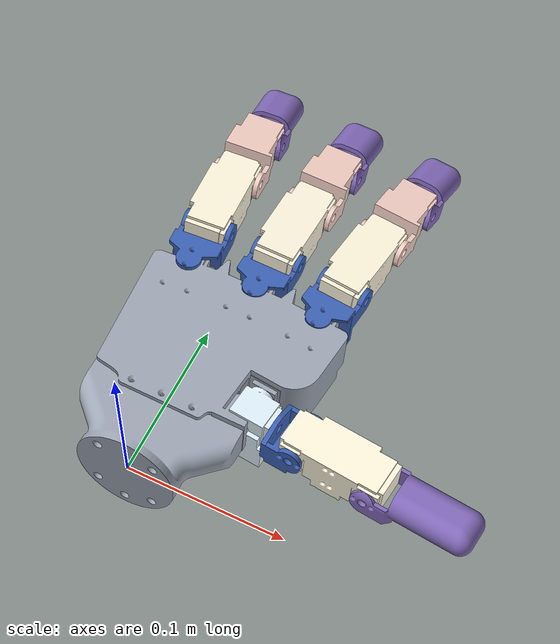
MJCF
<mujoco model="tilburg_hand">
<option timestep="0.01111" iterations="50" integrator="Euler" collision="predefined" gravity="0 0 -9.81" />
  <compiler angle="radian" autolimits="true"/>
  <default/>
  <asset>
    <mesh name="handbase_and_motors_collision" file="handbase_and_motors_collision.stl"/>
    <mesh name="thumb_mcp_collision" file="thumb_mcp_collision.stl"/>
    <mesh name="test_thumb_roll_mcp_collision" file="test_thumb_roll_mcp_collision.stl"/>
    <mesh name="proximal_phalange_collision" file="proximal_phalange_collision.stl"/>
    <mesh name="thumb_distal_collision" file="thumb_distal_collision.stl"/>
    <mesh name="mcp_3_collision" file="mcp_3_collision.stl"/>
    <mesh name="proximal_phalange_2_collision" file="proximal_phalange_2_collision.stl"/>
    <mesh name="middle_phalange_collision" file="middle_phalange_collision.stl"/>
    <mesh name="distal_finalshape_collision" file="distal_finalshape_collision.stl"/>
    <mesh name="mcp_3_2_collision" file="mcp_3_2_collision.stl"/>
    <mesh name="proximal_phalange_3_collision" file="proximal_phalange_3_collision.stl"/>
    <mesh name="middle_phalange_2_collision" file="middle_phalange_2_collision.stl"/>
    <mesh name="distal_finalshape_2_collision" file="distal_finalshape_2_collision.stl"/>
    <mesh name="mcp_3_3_collision" file="mcp_3_3_collision.stl"/>
    <mesh name="proximal_phalange_4_collision" file="proximal_phalange_4_collision.stl"/>
    <mesh name="middle_phalange_3_collision" file="middle_phalange_3_collision.stl"/>
    <mesh name="distal_finalshape_3_collision" file="distal_finalshape_3_collision.stl"/>
  </asset>
  <worldbody>
<body name="hand_base" pos="0 0 0" euler="0 0 0">    <geom name="handbase_and_motors" conaffinity="1" contype="1" friction="1 0.005 0.001" margin="0.001" solimp="0.95 0.95 0.01" solref="0.008 1" type="mesh" rgba="0.615865 0.649203 0.705643 1" mesh="handbase_and_motors_collision"/>
    <body name="thumb_mcp" pos="0.0459067 0.0814877 -0.0103767" quat="0.0403773 -0.0219363 -0.674586 0.736765" gravcomp="0">
      <inertial pos="-0.00336008 0.0104245 0.0140112" quat="0.705399 0.708685 -0.00389937 -0.0127609" mass="0.0259261" diaginertia="4.44074e-06 4.37503e-06 2.95984e-06"/>
      <joint armature="0.01" damping="0.4" stiffness="0.3" frictionloss="0.01" ref="0" springref="0" margin="0.01" name="thumb_cmc" pos="0 0 0" axis="0 0 1" range="0 1.5708"/>
      <geom name="thumb_thumb_mcp" conaffinity="1" contype="1" friction="1 0.005 0.001" margin="0.001" solimp="0.95 0.95 0.01" solref="0.008 1" type="mesh" rgba="0.871558 0.93709 0.976409 1" mesh="thumb_mcp_collision"/>
      <body name="test_thumb_roll_mcp" pos="-0.01699 0 0.014" quat="0.707107 0 -0.707107 0" gravcomp="0">
        <inertial pos="-0.000503967 0.00367437 0.00891183" quat="0.441307 0.548539 0.474465 0.528428" mass="0.0051287" diaginertia="1.09205e-06 9.52622e-07 4.71781e-07"/>
        <joint armature="0.01" damping="0.4" stiffness="0.3" frictionloss="0.01" ref="0" springref="0" margin="0.01" name="thumb_mcp_rot" pos="0 0 0" axis="0 0 1" range="-1.74533 0"/>
        <geom name="thumb_test_thumb_roll_mcp" conaffinity="1" contype="1" friction="1 0.005 0.001" margin="0.001" solimp="0.95 0.95 0.01" solref="0.008 1" type="mesh" rgba="0.231373 0.380392 0.705882 1" mesh="test_thumb_roll_mcp_collision"/>
        <body name="proximal_phalange" pos="0.0131 -1.07477e-06 0.0185" quat="0.5 -0.5 0.5 -0.5" gravcomp="0">
          <inertial pos="0.00105525 -0.0248 -0.0139711" quat="0.707098 0.707098 -0.00349569 0.00349569" mass="0.0420084" diaginertia="1.8062e-05 1.71932e-05 4.27729e-06"/>
          <joint armature="0.01" damping="0.4" stiffness="0.3" frictionloss="0.01" ref="0" springref="0" margin="0.01" name="thumb_mcp" pos="0 0 0" axis="0 0 1" range="0 1.5708"/>
          <geom name="thumb_proximal_phalange" conaffinity="1" contype="1" friction="1 0.005 0.001" margin="0.001" solimp="0.95 0.95 0.01" solref="0.008 1" type="mesh" rgba="0.996506 0.963661 0.868622 1" mesh="proximal_phalange_collision"/>
          <body name="thumb_distal" pos="0 -0.0496 0" quat="0.707107 0 0 -0.707107" gravcomp="0">
            <inertial pos="0.0361694 5.09546e-05 -0.0132835" quat="0.493044 0.486424 0.504201 0.51583" mass="0.01279" diaginertia="5.91941e-06 5.23433e-06 1.78431e-06"/>
            <joint armature="0.01" damping="0.4" stiffness="0.3" frictionloss="0.01" ref="0" springref="0" margin="0.01" name="thumb_ip" pos="0 0 0" axis="0 0 1" range="0 1.6581"/>
            <geom name="thumb_thumb_distal" conaffinity="1" contype="1" friction="1 0.005 0.001" margin="0.001" solimp="0.95 0.95 0.01" solref="0.008 1" type="mesh" rgba="0.513726 0.415686 0.733333 1" mesh="thumb_distal_collision"/>
          </body>
        </body>
      </body>
    </body>
    <body name="mcp_3" pos="0.0538972 0.140661 -0.00372245" quat="0.997976 -0.0439674 0.0130398 -0.0440624" gravcomp="0">
      <inertial pos="-0.00048757 0.0155243 -0.0117405" quat="0.719022 -0.283303 0.16479 0.612855" mass="0.00917755" diaginertia="2.25958e-06 2.05723e-06 1.86647e-06"/>
      <joint armature="0.01" damping="0.4" stiffness="0.3" frictionloss="0.01" ref="0" springref="0" margin="0.01" name="index_mcp_abadd" pos="0 0 0" axis="0 0 1" range="-0.436332 0.436332"/>
      <geom name="index_mcp_3" conaffinity="1" contype="1" friction="1 0.005 0.001" margin="0.001" solimp="0.95 0.95 0.01" solref="0.008 1" type="mesh" rgba="0.231373 0.380392 0.705882 1" mesh="mcp_3_collision"/>
      <body name="proximal_phalange_2" pos="0.0131 0.0325 -0.00659893" quat="0.0308436 0.706434 0.0308436 0.706434" gravcomp="0">
        <inertial pos="0.00105525 -0.0248 -0.0139711" quat="0.707098 0.707098 -0.00349569 0.00349569" mass="0.0420084" diaginertia="1.8062e-05 1.71932e-05 4.27729e-06"/>
        <joint armature="0.01" damping="0.4" stiffness="0.3" frictionloss="0.01" ref="0" springref="0" margin="0.01" name="index_mcp" pos="0 0 0" axis="0 0 1" range="-0.0873 1.6581"/>
        <geom name="index_proximal_phalange_2" conaffinity="1" contype="1" friction="1 0.005 0.001" margin="0.001" solimp="0.95 0.95 0.01" solref="0.008 1" type="mesh" rgba="0.996506 0.963661 0.868622 1" mesh="proximal_phalange_2_collision"/>
        <body name="middle_phalange" pos="0 -0.0496 0" quat="0.67559 0 0 -0.737277" gravcomp="0">
          <inertial pos="0.0297882 0.000739764 -0.0138886" quat="0.491469 0.482081 0.50191 0.523586" mass="0.0257193" diaginertia="6.56033e-06 5.56532e-06 3.02948e-06"/>
          <joint armature="0.01" damping="0.4" stiffness="0.3" frictionloss="0.01" ref="0" springref="0" margin="0.01" name="index_pip" pos="0 0 0" axis="0 0 1" range="-0.0873 1.6581"/>
          <geom name="index_middle_phalange" conaffinity="1" contype="1" friction="1 0.005 0.001" margin="0.001" solimp="0.95 0.95 0.01" solref="0.008 1" type="mesh" rgba="0.958732 0.818161 0.775603 1" mesh="middle_phalange_collision"/>
          <body name="distal_finalshape" pos="0.0423 0 -1e-05" quat="0.999048 0.000871834 3.80651e-05 -0.0436194" gravcomp="0">
            <inertial pos="0.0280291 -0.000103785 -0.0133295" quat="0.490667 0.474831 0.50425 0.528691" mass="0.00905" diaginertia="2.9933e-06 2.44126e-06 1.2834e-06"/>
            <joint armature="0.01" damping="0.4" stiffness="0.3" frictionloss="0.01" ref="0" springref="0" margin="0.01" name="index_dip" pos="0 0 0" axis="0 0 1" range="-0.0873 1.6581"/>
            <geom name="index_distal_finalshape" conaffinity="1" contype="1" friction="1 0.005 0.001" margin="0.001" solimp="0.95 0.95 0.01" solref="0.008 1" type="mesh" rgba="0.513726 0.415686 0.733333 1" mesh="distal_finalshape_collision"/>
          </body>
        </body>
      </body>
    </body>
    <body name="mcp_3_2" pos="0.00982995 0.142679 -0.00257471" quat="0.998948 -0.0433568 0.0149452 -0.000489352" gravcomp="0">
      <inertial pos="-0.00048757 0.0155243 -0.0117405" quat="0.719022 -0.283303 0.16479 0.612855" mass="0.00917755" diaginertia="2.25958e-06 2.05723e-06 1.86647e-06"/>
      <joint armature="0.01" damping="0.4" stiffness="0.3" frictionloss="0.01" ref="0" springref="0" margin="0.01" name="middle_mcp_abadd" pos="0 0 0" axis="0 0 1" range="-0.436332 0.436332"/>
      <geom name="middle_mcp_3_2" conaffinity="1" contype="1" friction="1 0.005 0.001" margin="0.001" solimp="0.95 0.95 0.01" solref="0.008 1" type="mesh" rgba="0.231373 0.380392 0.705882 1" mesh="mcp_3_2_collision"/>
      <body name="proximal_phalange_3" pos="0.0131 0.0325 -0.00659893" quat="0.0304446 0.706451 0.0304446 0.706451" gravcomp="0">
        <inertial pos="0.00105525 -0.0248 -0.0139711" quat="0.707098 0.707098 -0.00349569 0.00349569" mass="0.0420084" diaginertia="1.8062e-05 1.71932e-05 4.27729e-06"/>
        <joint armature="0.01" damping="0.4" stiffness="0.3" frictionloss="0.01" ref="0" springref="0" margin="0.01" name="middle_mcp" pos="0 0 0" axis="0 0 1" range="-0.0873 1.6581"/>
        <geom name="middle_proximal_phalange_3" conaffinity="1" contype="1" friction="1 0.005 0.001" margin="0.001" solimp="0.95 0.95 0.01" solref="0.008 1" type="mesh" rgba="0.996506 0.963661 0.868622 1" mesh="proximal_phalange_3_collision"/>
        <body name="middle_phalange_2" pos="0 -0.0496 0" quat="0.67588 0 0 -0.737012" gravcomp="0">
          <inertial pos="0.0297882 0.000739764 -0.0138886" quat="0.491469 0.482081 0.50191 0.523586" mass="0.0257193" diaginertia="6.56033e-06 5.56532e-06 3.02948e-06"/>
          <joint armature="0.01" damping="0.4" stiffness="0.3" frictionloss="0.01" ref="0" springref="0" margin="0.01" name="middle_pip" pos="0 0 0" axis="0 0 1" range="-0.0873 1.6581"/>
          <geom name="middle_middle_phalange_2" conaffinity="1" contype="1" friction="1 0.005 0.001" margin="0.001" solimp="0.95 0.95 0.01" solref="0.008 1" type="mesh" rgba="0.958732 0.818161 0.775603 1" mesh="middle_phalange_2_collision"/>
          <body name="distal_finalshape_2" pos="0.0423 0 -1e-05" quat="0.999054 0.000871839 3.79378e-05 -0.0434735" gravcomp="0">
            <inertial pos="0.0280291 -0.000103785 -0.0133295" quat="0.490667 0.474831 0.50425 0.528691" mass="0.00905" diaginertia="2.9933e-06 2.44126e-06 1.2834e-06"/>
            <joint armature="0.01" damping="0.4" stiffness="0.3" frictionloss="0.01" ref="0" springref="0" margin="0.01" name="middle_dip" pos="0 0 0" axis="0 0 1" range="-0.0873 1.6581"/>
            <geom name="middle_distal_finalshape_2" conaffinity="1" contype="1" friction="1 0.005 0.001" margin="0.001" solimp="0.95 0.95 0.01" solref="0.008 1" type="mesh" rgba="0.513726 0.415686 0.733333 1" mesh="distal_finalshape_2_collision"/>
          </body>
        </body>
      </body>
    </body>
    <body name="mcp_3_3" pos="-0.03465 0.140579 0.00196625" quat="0.998018 -0.0426636 0.0168222 0.0430846" gravcomp="0">
      <inertial pos="-0.00048757 0.0155243 -0.0117405" quat="0.719022 -0.283303 0.16479 0.612855" mass="0.00917755" diaginertia="2.25958e-06 2.05723e-06 1.86647e-06"/>
      <joint armature="0.01" damping="0.4" stiffness="0.3" frictionloss="0.01" ref="0" springref="0" margin="0.01" name="ring_mcp_abadd" pos="0 0 0" axis="0 0 1" range="-0.436332 0.436332"/>
      <geom name="ring_mcp_3_3" conaffinity="1" contype="1" friction="1 0.005 0.001" margin="0.001" solimp="0.95 0.95 0.01" solref="0.008 1" type="mesh" rgba="0.231373 0.380392 0.705882 1" mesh="mcp_3_3_collision"/>
      <body name="proximal_phalange_4" pos="0.0131 0.0325 -0.00659893" quat="0.0276998 0.706564 0.0276998 0.706564" gravcomp="0">
        <inertial pos="0.00105525 -0.0248 -0.0139711" quat="0.707098 0.707098 -0.00349569 0.00349569" mass="0.0420084" diaginertia="1.8062e-05 1.71932e-05 4.27729e-06"/>
        <joint armature="0.01" damping="0.4" stiffness="0.3" frictionloss="0.01" ref="0" springref="0" margin="0.01" name="ring_mcp" pos="0 0 0" axis="0 0 1" range="-0.0873 1.6581"/>
        <geom name="ring_proximal_phalange_4" conaffinity="1" contype="1" friction="1 0.005 0.001" margin="0.001" solimp="0.95 0.95 0.01" solref="0.008 1" type="mesh" rgba="0.996506 0.963661 0.868622 1" mesh="proximal_phalange_4_collision"/>
        <body name="middle_phalange_3" pos="0 -0.0496 0" quat="0.67559 0 0 -0.737277" gravcomp="0">
          <inertial pos="0.0297882 0.000739764 -0.0138886" quat="0.491469 0.482081 0.50191 0.523586" mass="0.0257193" diaginertia="6.56033e-06 5.56532e-06 3.02948e-06"/>
          <joint armature="0.01" damping="0.4" stiffness="0.3" frictionloss="0.01" ref="0" springref="0" margin="0.01" name="ring_pip" pos="0 0 0" axis="0 0 1" range="-0.0873 1.6581"/>
          <geom name="ring_middle_phalange_3" conaffinity="1" contype="1" friction="1 0.005 0.001" margin="0.001" solimp="0.95 0.95 0.01" solref="0.008 1" type="mesh" rgba="0.958732 0.818161 0.775603 1" mesh="middle_phalange_3_collision"/>
          <body name="distal_finalshape_3" pos="0.0423 0 -1e-05" quat="0.999048 0.000871834 3.80651e-05 -0.0436194" gravcomp="0">
            <inertial pos="0.0280291 -0.000103785 -0.0133295" quat="0.490667 0.474831 0.50425 0.528691" mass="0.00905" diaginertia="2.9933e-06 2.44126e-06 1.2834e-06"/>
            <joint armature="0.01" damping="0.4" stiffness="0.3" frictionloss="0.01" ref="0" springref="0" margin="0.01" name="ring_dip" pos="0 0 0" axis="0 0 1" range="-0.0873 1.6581"/>
            <geom name="ring_distal_finalshape_3" conaffinity="1" contype="1" friction="1 0.005 0.001" margin="0.001" solimp="0.95 0.95 0.01" solref="0.008 1" type="mesh" rgba="0.513726 0.415686 0.733333 1" mesh="distal_finalshape_3_collision"/>
          </body>
        </body>
      </body>
    </body>
</body>  </worldbody>
<actuator><position ctrllimited="true" forcelimited="true" forcerange="-3 3" kp="100" gear="1" ctrlrange="0 1.5708" joint="thumb_cmc" name="thumb_cmc"></position>
<position ctrllimited="true" forcelimited="true" forcerange="-3 3" kp="100" gear="1" ctrlrange="-1.74533 0" joint="thumb_mcp_rot" name="thumb_mcp_rot"></position>
<position ctrllimited="true" forcelimited="true" forcerange="-3 3" kp="100" gear="1" ctrlrange="0 1.5708" joint="thumb_mcp" name="thumb_mcp"></position>
<position ctrllimited="true" forcelimited="true" forcerange="-3 3" kp="100" gear="1" ctrlrange="0 1.6581" joint="thumb_ip" name="thumb_ip"></position>
<position ctrllimited="true" forcelimited="true" forcerange="-3 3" kp="100" gear="1" ctrlrange="-0.436332 0.436332" joint="index_mcp_abadd" name="index_mcp_abadd"></position>
<position ctrllimited="true" forcelimited="true" forcerange="-3 3" kp="100" gear="1" ctrlrange="-0.0873 1.6581" joint="index_mcp" name="index_mcp"></position>
<position ctrllimited="true" forcelimited="true" forcerange="-3 3" kp="100" gear="1" ctrlrange="-0.0873 1.6581" joint="index_pip" name="index_pip"></position>
<position ctrllimited="true" forcelimited="true" forcerange="-3 3" kp="100" gear="1" ctrlrange="-0.0873 1.6581" joint="index_dip" name="index_dip"></position>
<position ctrllimited="true" forcelimited="true" forcerange="-3 3" kp="100" gear="1" ctrlrange="-0.436332 0.436332" joint="middle_mcp_abadd" name="middle_mcp_abadd"></position>
<position ctrllimited="true" forcelimited="true" forcerange="-3 3" kp="100" gear="1" ctrlrange="-0.0873 1.6581" joint="middle_mcp" name="middle_mcp"></position>
<position ctrllimited="true" forcelimited="true" forcerange="-3 3" kp="100" gear="1" ctrlrange="-0.0873 1.6581" joint="middle_pip" name="middle_pip"></position>
<position ctrllimited="true" forcelimited="true" forcerange="-3 3" kp="100" gear="1" ctrlrange="-0.0873 1.6581" joint="middle_dip" name="middle_dip"></position>
<position ctrllimited="true" forcelimited="true" forcerange="-3 3" kp="100" gear="1" ctrlrange="-0.436332 0.436332" joint="ring_mcp_abadd" name="ring_mcp_abadd"></position>
<position ctrllimited="true" forcelimited="true" forcerange="-3 3" kp="100" gear="1" ctrlrange="-0.0873 1.6581" joint="ring_mcp" name="ring_mcp"></position>
<position ctrllimited="true" forcelimited="true" forcerange="-3 3" kp="100" gear="1" ctrlrange="-0.0873 1.6581" joint="ring_pip" name="ring_pip"></position>
<position ctrllimited="true" forcelimited="true" forcerange="-3 3" kp="100" gear="1" ctrlrange="-0.0873 1.6581" joint="ring_dip" name="ring_dip"></position>
</actuator>
<contact><pair geom1="thumb_proximal_phalange" geom2="index_mcp_3" condim="3" friction="1 0.005 0.001" margin="0.0005" solimp="0.95 0.95 0.01" solref="0.008 1" /><pair geom1="thumb_proximal_phalange" geom2="index_proximal_phalange_2" condim="3" friction="1 0.005 0.001" margin="0.0005" solimp="0.95 0.95 0.01" solref="0.008 1" /><pair geom1="thumb_proximal_phalange" geom2="index_middle_phalange" condim="3" friction="1 0.005 0.001" margin="0.0005" solimp="0.95 0.95 0.01" solref="0.008 1" /><pair geom1="thumb_proximal_phalange" geom2="index_distal_finalshape" condim="3" friction="1 0.005 0.001" margin="0.0005" solimp="0.95 0.95 0.01" solref="0.008 1" /><pair geom1="thumb_proximal_phalange" geom2="middle_mcp_3_2" condim="3" friction="1 0.005 0.001" margin="0.0005" solimp="0.95 0.95 0.01" solref="0.008 1" /><pair geom1="thumb_proximal_phalange" geom2="middle_proximal_phalange_3" condim="3" friction="1 0.005 0.001" margin="0.0005" solimp="0.95 0.95 0.01" solref="0.008 1" /><pair geom1="thumb_proximal_phalange" geom2="middle_middle_phalange_2" condim="3" friction="1 0.005 0.001" margin="0.0005" solimp="0.95 0.95 0.01" solref="0.008 1" /><pair geom1="thumb_proximal_phalange" geom2="middle_distal_finalshape_2" condim="3" friction="1 0.005 0.001" margin="0.0005" solimp="0.95 0.95 0.01" solref="0.008 1" /><pair geom1="thumb_proximal_phalange" geom2="ring_mcp_3_3" condim="3" friction="1 0.005 0.001" margin="0.0005" solimp="0.95 0.95 0.01" solref="0.008 1" /><pair geom1="thumb_proximal_phalange" geom2="ring_proximal_phalange_4" condim="3" friction="1 0.005 0.001" margin="0.0005" solimp="0.95 0.95 0.01" solref="0.008 1" /><pair geom1="thumb_proximal_phalange" geom2="ring_middle_phalange_3" condim="3" friction="1 0.005 0.001" margin="0.0005" solimp="0.95 0.95 0.01" solref="0.008 1" /><pair geom1="thumb_proximal_phalange" geom2="ring_distal_finalshape_3" condim="3" friction="1 0.005 0.001" margin="0.0005" solimp="0.95 0.95 0.01" solref="0.008 1" /><pair geom1="handbase_and_motors" geom2="thumb_thumb_distal" condim="3" friction="1 0.005 0.001" margin="0.0005" solimp="0.95 0.95 0.01" solref="0.008 1" /><pair geom1="thumb_thumb_distal" geom2="index_mcp_3" condim="3" friction="1 0.005 0.001" margin="0.0005" solimp="0.95 0.95 0.01" solref="0.008 1" /><pair geom1="thumb_thumb_distal" geom2="index_proximal_phalange_2" condim="3" friction="1 0.005 0.001" margin="0.0005" solimp="0.95 0.95 0.01" solref="0.008 1" /><pair geom1="thumb_thumb_distal" geom2="index_middle_phalange" condim="3" friction="1 0.005 0.001" margin="0.0005" solimp="0.95 0.95 0.01" solref="0.008 1" /><pair geom1="thumb_thumb_distal" geom2="index_distal_finalshape" condim="3" friction="1 0.005 0.001" margin="0.0005" solimp="0.95 0.95 0.01" solref="0.008 1" /><pair geom1="thumb_thumb_distal" geom2="middle_mcp_3_2" condim="3" friction="1 0.005 0.001" margin="0.0005" solimp="0.95 0.95 0.01" solref="0.008 1" /><pair geom1="thumb_thumb_distal" geom2="middle_proximal_phalange_3" condim="3" friction="1 0.005 0.001" margin="0.0005" solimp="0.95 0.95 0.01" solref="0.008 1" /><pair geom1="thumb_thumb_distal" geom2="middle_middle_phalange_2" condim="3" friction="1 0.005 0.001" margin="0.0005" solimp="0.95 0.95 0.01" solref="0.008 1" /><pair geom1="thumb_thumb_distal" geom2="middle_distal_finalshape_2" condim="3" friction="1 0.005 0.001" margin="0.0005" solimp="0.95 0.95 0.01" solref="0.008 1" /><pair geom1="thumb_thumb_distal" geom2="ring_mcp_3_3" condim="3" friction="1 0.005 0.001" margin="0.0005" solimp="0.95 0.95 0.01" solref="0.008 1" /><pair geom1="thumb_thumb_distal" geom2="ring_proximal_phalange_4" condim="3" friction="1 0.005 0.001" margin="0.0005" solimp="0.95 0.95 0.01" solref="0.008 1" /><pair geom1="thumb_thumb_distal" geom2="ring_middle_phalange_3" condim="3" friction="1 0.005 0.001" margin="0.0005" solimp="0.95 0.95 0.01" solref="0.008 1" /><pair geom1="thumb_thumb_distal" geom2="ring_distal_finalshape_3" condim="3" friction="1 0.005 0.001" margin="0.0005" solimp="0.95 0.95 0.01" solref="0.008 1" /><pair geom1="index_mcp_3" geom2="index_distal_finalshape" condim="3" friction="1 0.005 0.001" margin="0.0005" solimp="0.95 0.95 0.01" solref="0.008 1" /><pair geom1="index_proximal_phalange_2" geom2="index_distal_finalshape" condim="3" friction="1 0.005 0.001" margin="0.0005" solimp="0.95 0.95 0.01" solref="0.008 1" /><pair geom1="index_mcp_3" geom2="middle_mcp_3_2" condim="3" friction="1 0.005 0.001" margin="0.0005" solimp="0.95 0.95 0.01" solref="0.008 1" /><pair geom1="index_mcp_3" geom2="middle_proximal_phalange_3" condim="3" friction="1 0.005 0.001" margin="0.0005" solimp="0.95 0.95 0.01" solref="0.008 1" /><pair geom1="index_mcp_3" geom2="middle_middle_phalange_2" condim="3" friction="1 0.005 0.001" margin="0.0005" solimp="0.95 0.95 0.01" solref="0.008 1" /><pair geom1="index_mcp_3" geom2="middle_distal_finalshape_2" condim="3" friction="1 0.005 0.001" margin="0.0005" solimp="0.95 0.95 0.01" solref="0.008 1" /><pair geom1="index_mcp_3" geom2="ring_mcp_3_3" condim="3" friction="1 0.005 0.001" margin="0.0005" solimp="0.95 0.95 0.01" solref="0.008 1" /><pair geom1="index_mcp_3" geom2="ring_proximal_phalange_4" condim="3" friction="1 0.005 0.001" margin="0.0005" solimp="0.95 0.95 0.01" solref="0.008 1" /><pair geom1="index_mcp_3" geom2="ring_middle_phalange_3" condim="3" friction="1 0.005 0.001" margin="0.0005" solimp="0.95 0.95 0.01" solref="0.008 1" /><pair geom1="index_mcp_3" geom2="ring_distal_finalshape_3" condim="3" friction="1 0.005 0.001" margin="0.0005" solimp="0.95 0.95 0.01" solref="0.008 1" /><pair geom1="index_proximal_phalange_2" geom2="middle_mcp_3_2" condim="3" friction="1 0.005 0.001" margin="0.0005" solimp="0.95 0.95 0.01" solref="0.008 1" /><pair geom1="index_proximal_phalange_2" geom2="middle_proximal_phalange_3" condim="3" friction="1 0.005 0.001" margin="0.0005" solimp="0.95 0.95 0.01" solref="0.008 1" /><pair geom1="index_proximal_phalange_2" geom2="middle_middle_phalange_2" condim="3" friction="1 0.005 0.001" margin="0.0005" solimp="0.95 0.95 0.01" solref="0.008 1" /><pair geom1="index_proximal_phalange_2" geom2="middle_distal_finalshape_2" condim="3" friction="1 0.005 0.001" margin="0.0005" solimp="0.95 0.95 0.01" solref="0.008 1" /><pair geom1="index_proximal_phalange_2" geom2="ring_mcp_3_3" condim="3" friction="1 0.005 0.001" margin="0.0005" solimp="0.95 0.95 0.01" solref="0.008 1" /><pair geom1="index_proximal_phalange_2" geom2="ring_proximal_phalange_4" condim="3" friction="1 0.005 0.001" margin="0.0005" solimp="0.95 0.95 0.01" solref="0.008 1" /><pair geom1="index_proximal_phalange_2" geom2="ring_middle_phalange_3" condim="3" friction="1 0.005 0.001" margin="0.0005" solimp="0.95 0.95 0.01" solref="0.008 1" /><pair geom1="index_proximal_phalange_2" geom2="ring_distal_finalshape_3" condim="3" friction="1 0.005 0.001" margin="0.0005" solimp="0.95 0.95 0.01" solref="0.008 1" /><pair geom1="index_middle_phalange" geom2="middle_mcp_3_2" condim="3" friction="1 0.005 0.001" margin="0.0005" solimp="0.95 0.95 0.01" solref="0.008 1" /><pair geom1="index_middle_phalange" geom2="middle_proximal_phalange_3" condim="3" friction="1 0.005 0.001" margin="0.0005" solimp="0.95 0.95 0.01" solref="0.008 1" /><pair geom1="index_middle_phalange" geom2="middle_middle_phalange_2" condim="3" friction="1 0.005 0.001" margin="0.0005" solimp="0.95 0.95 0.01" solref="0.008 1" /><pair geom1="index_middle_phalange" geom2="middle_distal_finalshape_2" condim="3" friction="1 0.005 0.001" margin="0.0005" solimp="0.95 0.95 0.01" solref="0.008 1" /><pair geom1="index_middle_phalange" geom2="ring_mcp_3_3" condim="3" friction="1 0.005 0.001" margin="0.0005" solimp="0.95 0.95 0.01" solref="0.008 1" /><pair geom1="index_middle_phalange" geom2="ring_proximal_phalange_4" condim="3" friction="1 0.005 0.001" margin="0.0005" solimp="0.95 0.95 0.01" solref="0.008 1" /><pair geom1="index_middle_phalange" geom2="ring_middle_phalange_3" condim="3" friction="1 0.005 0.001" margin="0.0005" solimp="0.95 0.95 0.01" solref="0.008 1" /><pair geom1="index_middle_phalange" geom2="ring_distal_finalshape_3" condim="3" friction="1 0.005 0.001" margin="0.0005" solimp="0.95 0.95 0.01" solref="0.008 1" /><pair geom1="handbase_and_motors" geom2="index_distal_finalshape" condim="3" friction="1 0.005 0.001" margin="0.0005" solimp="0.95 0.95 0.01" solref="0.008 1" /><pair geom1="index_distal_finalshape" geom2="middle_mcp_3_2" condim="3" friction="1 0.005 0.001" margin="0.0005" solimp="0.95 0.95 0.01" solref="0.008 1" /><pair geom1="index_distal_finalshape" geom2="middle_proximal_phalange_3" condim="3" friction="1 0.005 0.001" margin="0.0005" solimp="0.95 0.95 0.01" solref="0.008 1" /><pair geom1="index_distal_finalshape" geom2="middle_middle_phalange_2" condim="3" friction="1 0.005 0.001" margin="0.0005" solimp="0.95 0.95 0.01" solref="0.008 1" /><pair geom1="index_distal_finalshape" geom2="middle_distal_finalshape_2" condim="3" friction="1 0.005 0.001" margin="0.0005" solimp="0.95 0.95 0.01" solref="0.008 1" /><pair geom1="index_distal_finalshape" geom2="ring_mcp_3_3" condim="3" friction="1 0.005 0.001" margin="0.0005" solimp="0.95 0.95 0.01" solref="0.008 1" /><pair geom1="index_distal_finalshape" geom2="ring_proximal_phalange_4" condim="3" friction="1 0.005 0.001" margin="0.0005" solimp="0.95 0.95 0.01" solref="0.008 1" /><pair geom1="index_distal_finalshape" geom2="ring_middle_phalange_3" condim="3" friction="1 0.005 0.001" margin="0.0005" solimp="0.95 0.95 0.01" solref="0.008 1" /><pair geom1="index_distal_finalshape" geom2="ring_distal_finalshape_3" condim="3" friction="1 0.005 0.001" margin="0.0005" solimp="0.95 0.95 0.01" solref="0.008 1" /><pair geom1="middle_mcp_3_2" geom2="middle_distal_finalshape_2" condim="3" friction="1 0.005 0.001" margin="0.0005" solimp="0.95 0.95 0.01" solref="0.008 1" /><pair geom1="middle_proximal_phalange_3" geom2="middle_distal_finalshape_2" condim="3" friction="1 0.005 0.001" margin="0.0005" solimp="0.95 0.95 0.01" solref="0.008 1" /><pair geom1="middle_mcp_3_2" geom2="ring_mcp_3_3" condim="3" friction="1 0.005 0.001" margin="0.0005" solimp="0.95 0.95 0.01" solref="0.008 1" /><pair geom1="middle_mcp_3_2" geom2="ring_proximal_phalange_4" condim="3" friction="1 0.005 0.001" margin="0.0005" solimp="0.95 0.95 0.01" solref="0.008 1" /><pair geom1="middle_mcp_3_2" geom2="ring_middle_phalange_3" condim="3" friction="1 0.005 0.001" margin="0.0005" solimp="0.95 0.95 0.01" solref="0.008 1" /><pair geom1="middle_mcp_3_2" geom2="ring_distal_finalshape_3" condim="3" friction="1 0.005 0.001" margin="0.0005" solimp="0.95 0.95 0.01" solref="0.008 1" /><pair geom1="middle_proximal_phalange_3" geom2="ring_mcp_3_3" condim="3" friction="1 0.005 0.001" margin="0.0005" solimp="0.95 0.95 0.01" solref="0.008 1" /><pair geom1="middle_proximal_phalange_3" geom2="ring_proximal_phalange_4" condim="3" friction="1 0.005 0.001" margin="0.0005" solimp="0.95 0.95 0.01" solref="0.008 1" /><pair geom1="middle_proximal_phalange_3" geom2="ring_middle_phalange_3" condim="3" friction="1 0.005 0.001" margin="0.0005" solimp="0.95 0.95 0.01" solref="0.008 1" /><pair geom1="middle_proximal_phalange_3" geom2="ring_distal_finalshape_3" condim="3" friction="1 0.005 0.001" margin="0.0005" solimp="0.95 0.95 0.01" solref="0.008 1" /><pair geom1="middle_middle_phalange_2" geom2="ring_mcp_3_3" condim="3" friction="1 0.005 0.001" margin="0.0005" solimp="0.95 0.95 0.01" solref="0.008 1" /><pair geom1="middle_middle_phalange_2" geom2="ring_proximal_phalange_4" condim="3" friction="1 0.005 0.001" margin="0.0005" solimp="0.95 0.95 0.01" solref="0.008 1" /><pair geom1="middle_middle_phalange_2" geom2="ring_middle_phalange_3" condim="3" friction="1 0.005 0.001" margin="0.0005" solimp="0.95 0.95 0.01" solref="0.008 1" /><pair geom1="middle_middle_phalange_2" geom2="ring_distal_finalshape_3" condim="3" friction="1 0.005 0.001" margin="0.0005" solimp="0.95 0.95 0.01" solref="0.008 1" /><pair geom1="handbase_and_motors" geom2="middle_distal_finalshape_2" condim="3" friction="1 0.005 0.001" margin="0.0005" solimp="0.95 0.95 0.01" solref="0.008 1" /><pair geom1="middle_distal_finalshape_2" geom2="ring_mcp_3_3" condim="3" friction="1 0.005 0.001" margin="0.0005" solimp="0.95 0.95 0.01" solref="0.008 1" /><pair geom1="middle_distal_finalshape_2" geom2="ring_proximal_phalange_4" condim="3" friction="1 0.005 0.001" margin="0.0005" solimp="0.95 0.95 0.01" solref="0.008 1" /><pair geom1="middle_distal_finalshape_2" geom2="ring_middle_phalange_3" condim="3" friction="1 0.005 0.001" margin="0.0005" solimp="0.95 0.95 0.01" solref="0.008 1" /><pair geom1="middle_distal_finalshape_2" geom2="ring_distal_finalshape_3" condim="3" friction="1 0.005 0.001" margin="0.0005" solimp="0.95 0.95 0.01" solref="0.008 1" /><pair geom1="ring_mcp_3_3" geom2="ring_distal_finalshape_3" condim="3" friction="1 0.005 0.001" margin="0.0005" solimp="0.95 0.95 0.01" solref="0.008 1" /><pair geom1="ring_proximal_phalange_4" geom2="ring_distal_finalshape_3" condim="3" friction="1 0.005 0.001" margin="0.0005" solimp="0.95 0.95 0.01" solref="0.008 1" /><pair geom1="handbase_and_motors" geom2="ring_distal_finalshape_3" condim="3" friction="1 0.005 0.001" margin="0.0005" solimp="0.95 0.95 0.01" solref="0.008 1" /></contact></mujoco>
